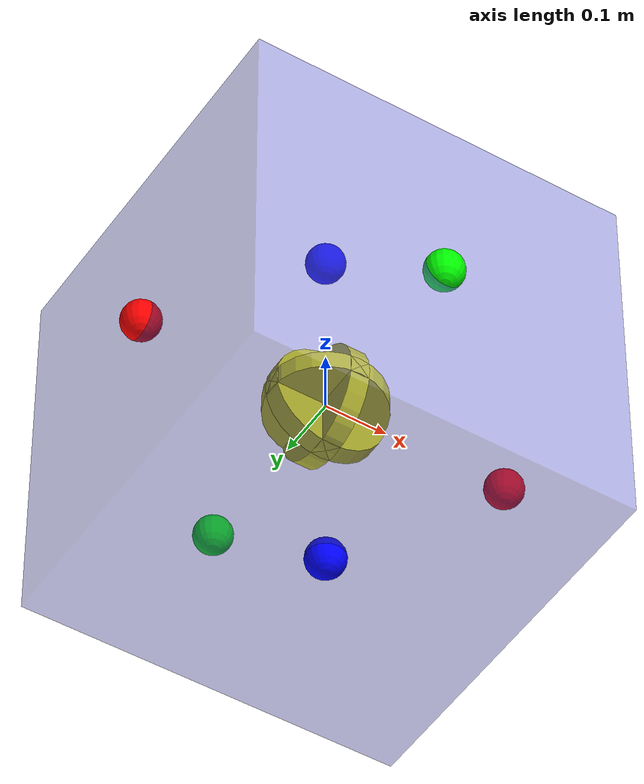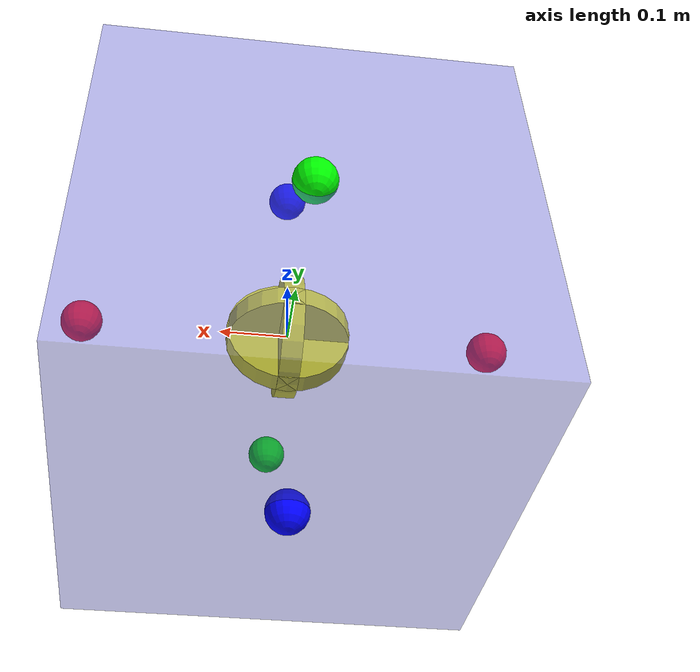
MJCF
<mujoco model="space_robot">
  <compiler angle="degree"/>
  <option gravity="0 0 0" integrator="RK4" timestep="0.002"/>

  <worldbody>
    <!-- main body: 0.6 m cube, mass=25 kg -->
    <body name="robot" pos="0 0 0">
      <freejoint/>
      <geom type="box" size="0.3 0.3 0.3" rgba="0.3 0.3 0.8 0.4" mass="25"/>

      <!-- Thruster sites on each face (visual markers) -->
      <site name="thruster_px" pos=" 0.3  0.0  0.0" size="0.03" rgba="1 0 0 1"/>
      <site name="thruster_nx" pos="-0.3  0.0  0.0" size="0.03" rgba="1 0 0 1"/>
      <site name="thruster_py" pos=" 0.0  0.3  0.0" size="0.03" rgba="0 1 0 1"/>
      <site name="thruster_ny" pos=" 0.0 -0.3  0.0" size="0.03" rgba="0 1 0 1"/>
      <site name="thruster_pz" pos=" 0.0  0.0  0.3" size="0.03" rgba="0 0 1 1"/>
      <site name="thruster_nz" pos=" 0.0  0.0 -0.3" size="0.03" rgba="0 0 1 1"/>

      <!-- ==================== Reaction wheels ==================== -->
      <!-- X-axis wheel (about +X) -->
      <body name="reaction_wheel_x" pos="0 0 0">
        <joint name="rw_x" type="hinge" axis="1 0 0" limited="false" damping="0.04"/>

        <inertial pos="0 0 0" mass="1.5" diaginertia="0.006075 0.00315 0.00315"/>
        <geom type="cylinder" fromto="-0.015 0 0  0.015 0 0" size="0.09"
              rgba="1 1 0 1" contype="0" conaffinity="0"/>
      </body>

      <!-- Y-axis wheel (about +Y) -->
      <body name="reaction_wheel_y" pos="0 0 0">
        <joint name="rw_y" type="hinge" axis="0 1 0" limited="false" damping="0.04"/>

        <inertial pos="0 0 0" mass="1.5" diaginertia="0.00315 0.006075 0.00315"/>
        <geom type="cylinder" fromto="0 -0.015 0  0 0.015 0" size="0.09"
              rgba="1 1 0 1" contype="0" conaffinity="0"/>
      </body>

      <!-- Z-axis wheel (about +Z) -->
      <body name="reaction_wheel_z" pos="0 0 0">
        <joint name="rw_z" type="hinge" axis="0 0 1" limited="false" damping="0.04"/>

        <inertial pos="0 0 0" mass="1.5" diaginertia="0.00315 0.00315 0.006075"/>
        <geom type="cylinder" fromto="0 0 -0.015  0 0 0.015" size="0.09"
              rgba="1 1 0 1" contype="0" conaffinity="0"/>
      </body>

    </body>
  </worldbody>

  <actuator>
    <!-- ==================== Thrusters (force actuators) ==================== -->
    <!-- ctrl in Newtons; gear is direction in body frame -->
    <general name="thruster_px" site="thruster_px" gear=" 1  0  0"
             ctrllimited="true" ctrlrange="0 10.0"/>
    <general name="thruster_nx" site="thruster_nx" gear="-1  0  0"
             ctrllimited="true" ctrlrange="0 10.0"/>
    <general name="thruster_py" site="thruster_py" gear=" 0  1  0"
             ctrllimited="true" ctrlrange="0 10.0"/>
    <general name="thruster_ny" site="thruster_ny" gear=" 0 -1  0"
             ctrllimited="true" ctrlrange="0 10.0"/>
    <general name="thruster_pz" site="thruster_pz" gear=" 0  0  1"
             ctrllimited="true" ctrlrange="0 10.0"/>
    <general name="thruster_nz" site="thruster_nz" gear=" 0  0 -1"
             ctrllimited="true" ctrlrange="0 10.0"/>

    <!-- ==================== Reaction wheels: velocity actuators ==================== -->
  <!-- Reaction wheels: velocity control -->
    <velocity name="rw_x" joint="rw_x" kv="50"
                ctrllimited="true" ctrlrange="-400 400"
                forcelimited="true" forcerange="-2.0 2.0"/>
    <velocity name="rw_y" joint="rw_y" kv="50"
                ctrllimited="true" ctrlrange="-400 400"
                forcelimited="true" forcerange="-2.0 2.0"/>
    <velocity name="rw_z" joint="rw_z" kv="50"
                ctrllimited="true" ctrlrange="-400 400"
                forcelimited="true" forcerange="-2.0 2.0"/>

  </actuator>
</mujoco>
